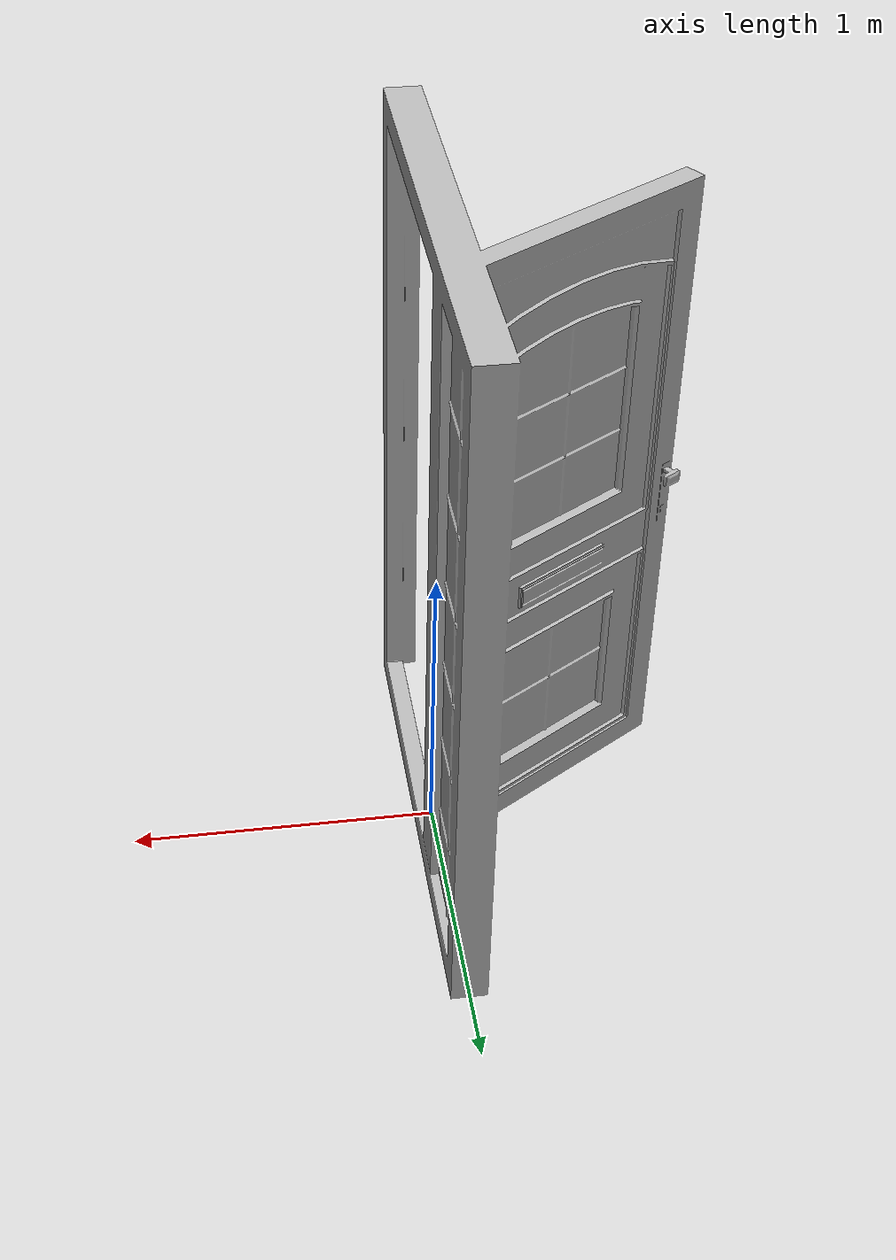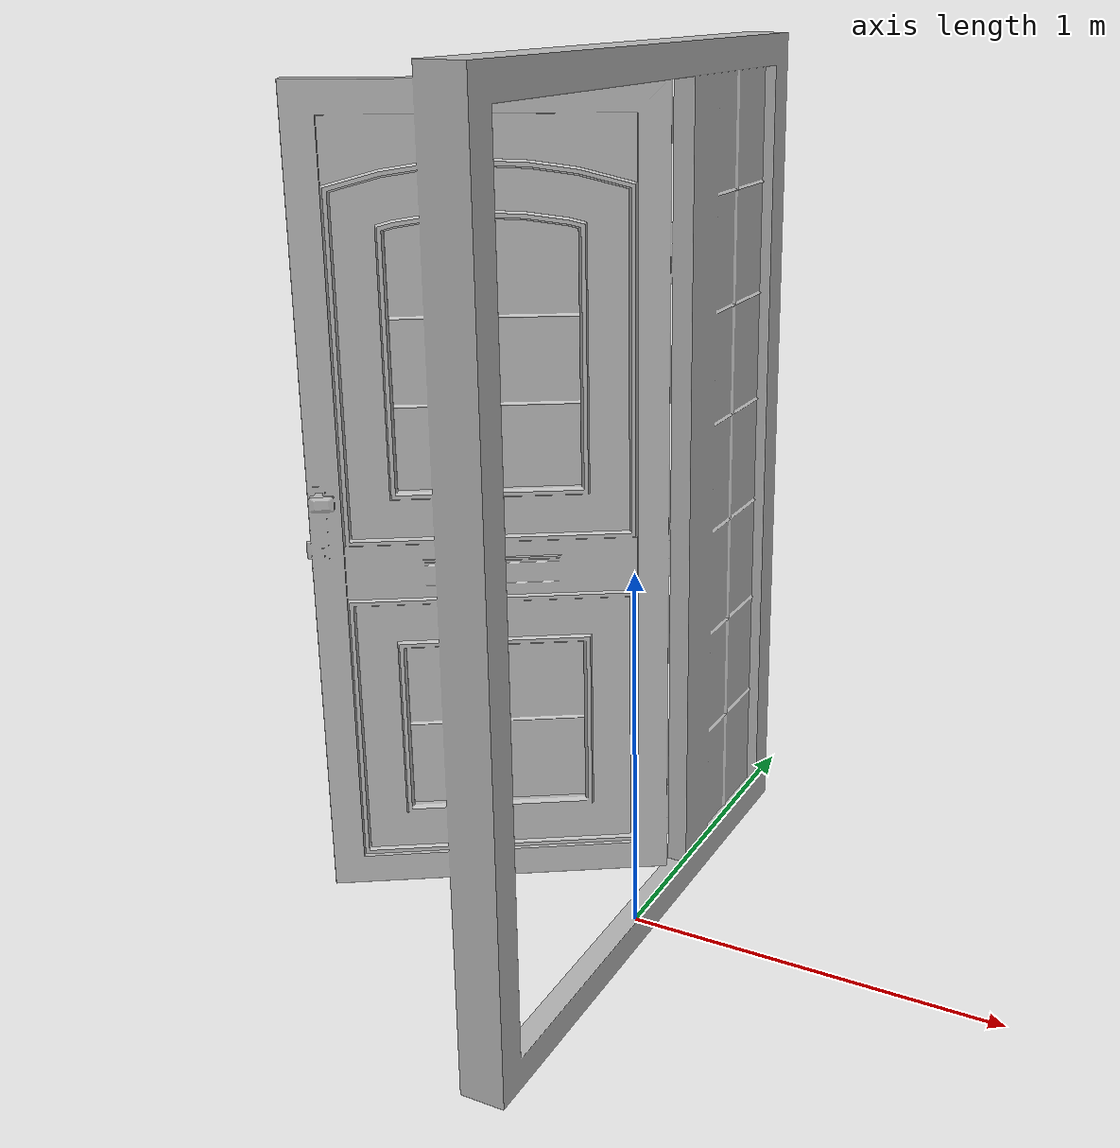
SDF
<?xml version='1.0'?>
<sdf version='1.4'>
  <model name='763'>
    <pose>0 0 0 0 0 0</pose>
    <static>true</static>
    <link name='link'>
      <collision name='collision'>
        <pose>0 0 0 0 0 0</pose>
        <geometry>
          <box>
            <size>0.859999 1.57 2</size>
          </box>
        </geometry>
      </collision>
      <visual name='visual'>
        <pose>0 0 0 0 0 0</pose>
        <geometry>
          <mesh><uri>model://763/763.dae</uri></mesh>
        </geometry>
      </visual>
    </link>
  </model>
</sdf>
